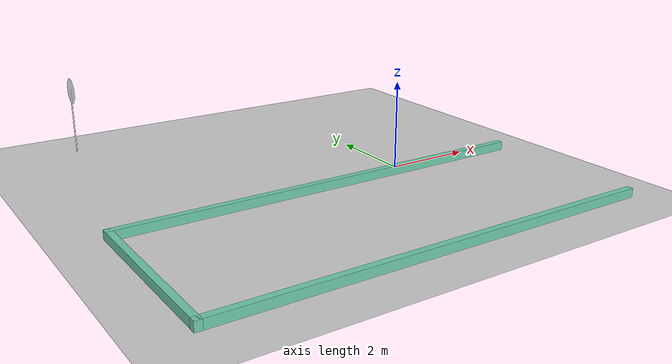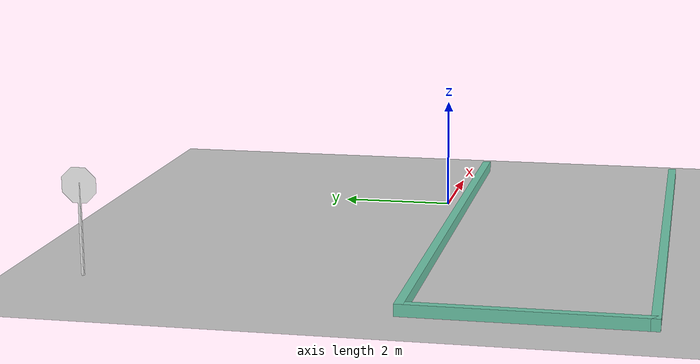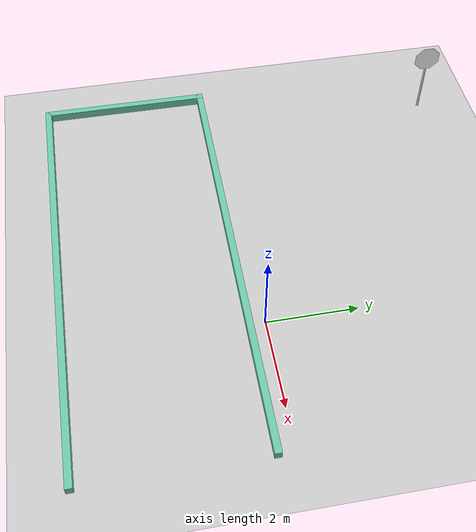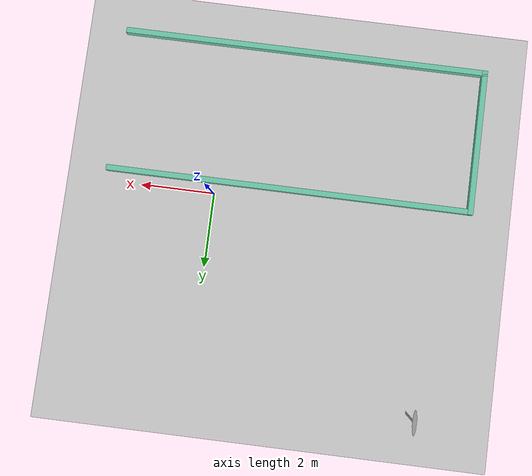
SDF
<sdf version="1.6">
 <world name="default">
  <light name="sun" type="directional">
   <pose>0 0 10 0 -0 0</pose>
   <diffuse>0.8 0.8 0.8 1</diffuse>
   <specular>0.1 0.1 0.1 1</specular>
   <attenuation>
    <range>1000</range>
    <constant>0.9</constant>
    <linear>0.01</linear>
    <quadratic>0.001</quadratic>
   </attenuation>
   <direction>-0.5 0.5 -1</direction>
  </light>
  <model name="ground_plane">
   <static>1</static>
   <link name="link">
    <collision name="collision">
     <geometry><plane><normal>0 0 1</normal><size>100 100</size></plane></geometry>
     <surface><friction><ode><mu>100</mu><mu2>50</mu2></ode></friction></surface>
    </collision>
    <visual name="visual">
     <cast_shadows>0</cast_shadows>
     <geometry><plane><normal>0 0 1</normal><size>100 100</size></plane></geometry>
     <material>
      <script><uri>file://media/materials/scripts/gazebo.material</uri><name>Gazebo/Grey</name></script>
     </material>
    </visual>
   </link>
  </model>
  <gravity>0 0 -9.8</gravity>
  <magnetic_field>6e-06 2.3e-05 -4.2e-05</magnetic_field>
  <atmosphere type="adiabatic"/>
  <physics name="default_physics" default="0" type="ode">
   <max_step_size>0.001</max_step_size>
   <real_time_factor>1</real_time_factor>
   <real_time_update_rate>1000</real_time_update_rate>
  </physics>
  <scene><ambient>0.4 0.4 0.4 1</ambient><background>0.7 0.7 0.7 1</background><shadows>1</shadows></scene>
  <spherical_coordinates>
   <surface_model>EARTH_WGS84</surface_model>
   <latitude_deg>0</latitude_deg>
   <longitude_deg>0</longitude_deg>
   <elevation>0</elevation>
   <heading_deg>0</heading_deg>
  </spherical_coordinates>
  <model name="Stop Sign_1">
   <link name="link">
    <collision name="collision">
     <geometry><mesh><uri>model://stop_sign/meshes/stop_sign.dae</uri><scale>1 1 1</scale></mesh></geometry>
    </collision>
    <visual name="visual">
     <geometry><mesh><uri>model://stop_sign/meshes/stop_sign.dae</uri><scale>1 1 1</scale></mesh></geometry>
     <material>
      <script>
       <uri>model://stop_sign/materials/scripts</uri>
       <uri>model://stop_sign/materials/textures</uri>
       <name>StopSign/Diffuse</name>
      </script>
     </material>
    </visual>
    <inertial>
     <inertia><ixx>1</ixx><ixy>0</ixy><ixz>0</ixz><iyy>1</iyy><iyz>0</iyz><izz>1</izz></inertia>
     <mass>1</mass>
    </inertial>
   </link>
   <pose>-5.83192 5.14848 1e-06 3.2e-05 -3.4e-05 1.55381</pose>
  </model>
  <model name="synthese">
   <pose>-2.025 -2.275 0 0 -0 0</pose>
   <link name="Wall_0">
    <collision name="Wall_0_Collision">
     <geometry><box><size>10 0.15 0.2</size></box></geometry>
     <pose>0 0 0.1 0 -0 0</pose>
    </collision>
    <visual name="Wall_0_Visual">
     <pose>0 0 0.1 0 -0 0</pose>
     <geometry><box><size>10 0.15 0.2</size></box></geometry>
     <material>
      <script><uri>file://media/materials/scripts/gazebo.material</uri><name>Gazebo/Grey</name></script>
      <ambient>0.435294 0.796078 0.67451 1</ambient>
     </material>
     <meta><layer>0</layer></meta>
    </visual>
    <pose>0 -1.925 0 0 -0 3.14159</pose>
   </link>
   <link name="Wall_1">
    <collision name="Wall_1_Collision">
     <geometry><box><size>4 0.15 0.2</size></box></geometry>
     <pose>0 0 0.1 0 -0 0</pose>
    </collision>
    <visual name="Wall_1_Visual">
     <pose>0 0 0.1 0 -0 0</pose>
     <geometry><box><size>4 0.15 0.2</size></box></geometry>
     <material>
      <script><uri>file://media/materials/scripts/gazebo.material</uri><name>Gazebo/Grey</name></script>
      <ambient>0.435294 0.796078 0.67451 1</ambient>
     </material>
     <meta><layer>0</layer></meta>
    </visual>
    <pose>-4.925 0 0 0 -0 1.5708</pose>
   </link>
   <link name="Wall_2">
    <collision name="Wall_2_Collision">
     <geometry><box><size>10 0.15 0.2</size></box></geometry>
     <pose>0 0 0.1 0 -0 0</pose>
    </collision>
    <visual name="Wall_2_Visual">
     <pose>0 0 0.1 0 -0 0</pose>
     <geometry><box><size>10 0.15 0.2</size></box></geometry>
     <material>
      <script><uri>file://media/materials/scripts/gazebo.material</uri><name>Gazebo/Grey</name></script>
      <ambient>0.435294 0.796078 0.67451 1</ambient>
     </material>
     <meta><layer>0</layer></meta>
    </visual>
    <pose>0 1.925 0 0 -0 0</pose>
   </link>
   <static>1</static>
  </model>
 </world>
</sdf>
